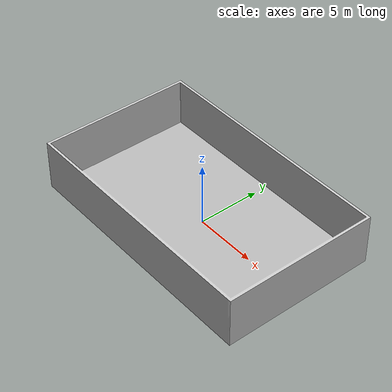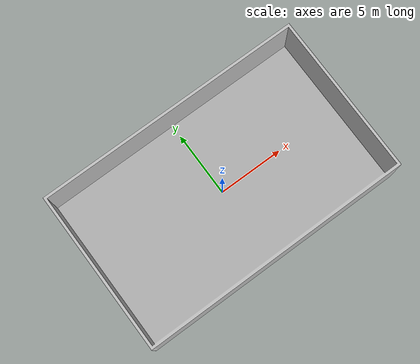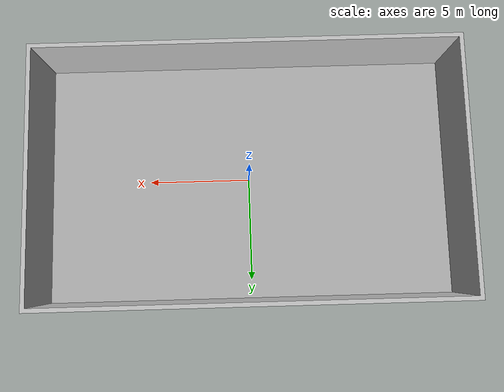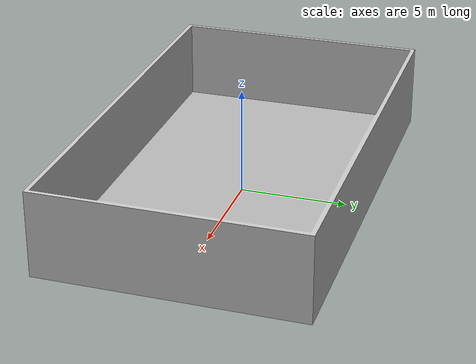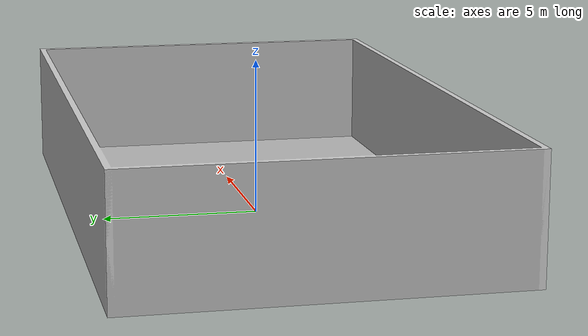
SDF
<sdf version="1.6">
  <world name="nics_world">
    <light name='sun' type='directional'>
      <cast_shadows>0</cast_shadows>
      <pose frame=''>0 0 10 0 -0 0</pose>
      <diffuse>0.8 0.8 0.8 1</diffuse>
      <specular>0.2 0.2 0.2 1</specular>
      <attenuation>
        <range>1000</range>
        <constant>0.9</constant>
        <linear>0.01</linear>
        <quadratic>0.001</quadratic>
      </attenuation>
      <direction>-0.5 0.1 -0.9</direction>
    </light>

    <model name="nics_scene">
      <pose>0 0 0.1 0 0 0</pose>
      <static>true</static>
      <link name="nics_scene">
        <visual name="visual">
          <geometry>
            <mesh>
              <uri>file:///home/nics/catkin_tjh/src/carlike_robot_sim/calf_carlike_robot/bringup/worlds/nics_scene/nics_world.dae</uri>
            </mesh>
          </geometry>
        </visual>
        <self_collide>0</self_collide>
        <enable_wind>0</enable_wind>
        <kinematic>0</kinematic>
        <collision name='collision'>
          <laser_retro>1</laser_retro>
          <max_contacts>10</max_contacts>
          <pose frame=''>0 0 0 0 -0 0</pose>
          <geometry>
            <mesh>
              <uri>file:///home/nics/catkin_tjh/src/carlike_robot_sim/calf_carlike_robot/bringup/worlds/nics_scene/nics_world.dae</uri>
              <scale>1 1 1</scale>
            </mesh>
          </geometry>
        </collision>
      </link>
    </model>
    <light name='user_directional_light_0' type='directional'>
      <pose frame=''>0 0 10 0 -0 0</pose>
      <diffuse>1 1 1 1</diffuse>
      <specular>1 1 1 1</specular>
      <direction>0.1 0.1 -0.9</direction>
      <attenuation>
        <range>20</range>
        <constant>0.5</constant>
        <linear>0.01</linear>
        <quadratic>0.001</quadratic>
      </attenuation>
      <cast_shadows>0</cast_shadows>
    </light>
    <light name='user_directional_light_1' type='directional'>
      <pose frame=''>0 10 0 -1.57 0 0</pose>
      <diffuse>1 1 1 1</diffuse>
      <specular>1 1 1 1</specular>
      <direction>0.1 0.1 -0.9</direction>
      <attenuation>
        <range>20</range>
        <constant>0.5</constant>
        <linear>0.01</linear>
        <quadratic>0.001</quadratic>
      </attenuation>
      <cast_shadows>0</cast_shadows>
    </light>
    <light name='user_directional_light_2' type='directional'>
      <pose frame=''>15 0 0 0 1.57 0</pose>
      <diffuse>1 1 1 1</diffuse>
      <specular>1 1 1 1</specular>
      <direction>0.1 0.1 -0.9</direction>
      <attenuation>
        <range>20</range>
        <constant>0.5</constant>
        <linear>0.01</linear>
        <quadratic>0.001</quadratic>
      </attenuation>
      <cast_shadows>0</cast_shadows>
    </light>
    <light name='user_directional_light_3' type='directional'>
      <pose frame=''>-15 0 0 0 -1.57 0</pose>
      <diffuse>1 1 1 1</diffuse>
      <specular>1 1 1 1</specular>
      <direction>0.1 0.1 -0.9</direction>
      <attenuation>
        <range>20</range>
        <constant>0.5</constant>
        <linear>0.01</linear>
        <quadratic>0.001</quadratic>
      </attenuation>
      <cast_shadows>0</cast_shadows>
    </light>
    <light name='user_directional_light_4' type='directional'>
      <pose frame=''>0 -10 0 1.57 -0 0</pose>
      <diffuse>1 1 1 1</diffuse>
      <specular>1 1 1 1</specular>
      <direction>0.1 0.1 -0.9</direction>
      <attenuation>
        <range>20</range>
        <constant>0.5</constant>
        <linear>0.01</linear>
        <quadratic>0.001</quadratic>
      </attenuation>
      <cast_shadows>0</cast_shadows>
    </light>
  </world>
</sdf>
